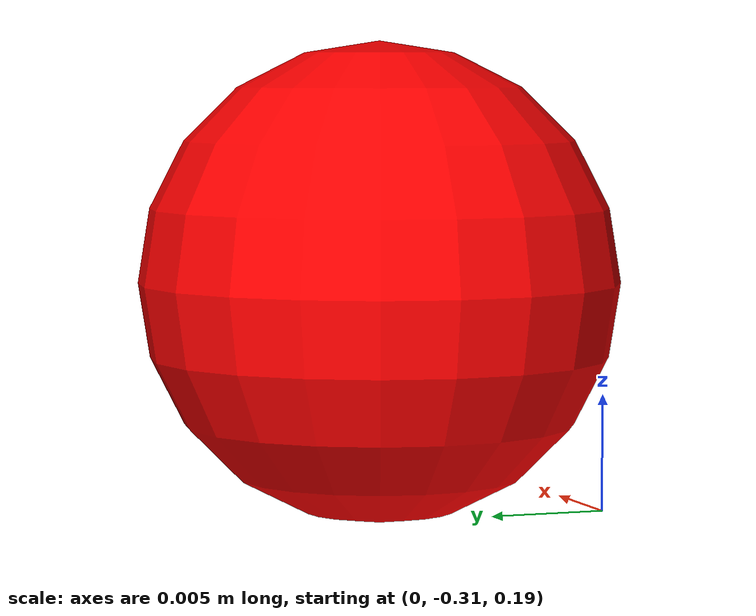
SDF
<?xml version="1.0"?>
<sdf version="1.8">
  <model name="target_sphere">
    <pose>0 -0.3 0.2 0 0 0</pose>

    <link name="sphere_link">
      <!-- Very light inertial properties since sphere is kinematic -->
      <inertial>
        <mass>0.001</mass>  <!-- 1 gram - negligible mass -->
        <inertia>
          <ixx>0.000001</ixx>
          <iyy>0.000001</iyy>
          <izz>0.000001</izz>
          <ixy>0</ixy>
          <ixz>0</ixz>
          <iyz>0</iyz>
        </inertia>
      </inertial>

      <gravity>0</gravity>  <!-- Disable gravity so sphere doesn't fall -->

      <!-- Enable kinematic mode - sphere is moved by external commands only -->
      <kinematic>true</kinematic>

      <!-- NO COLLISION - Robot can pass through it -->
      <!-- This allows the robot to reach the target without pushing the sphere -->

      <visual name="visual">
        <geometry>
          <sphere>
            <radius>0.01</radius>  <!-- 1cm radius = 2cm diameter -->
          </sphere>
        </geometry>
        <material>
          <ambient>1.0 0.0 0.0 1.0</ambient>  <!-- Red target for visibility -->
          <diffuse>1.0 0.0 0.0 1.0</diffuse>
          <specular>0.5 0.5 0.5 1.0</specular>
        </material>
      </visual>
    </link>

    <!-- Make the model DYNAMIC but with fixed position via kinematic mode
         This allows service calls to update the sphere position
         BUT we disable physics interactions to prevent pushing -->
    <static>false</static>

  </model>
</sdf>
